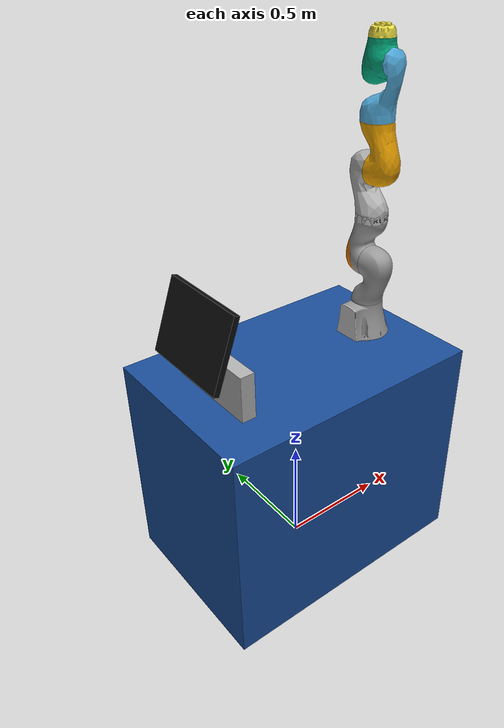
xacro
<?xml version="1.0"?>

<!-- top level -->
<robot name="iiwa7" xmlns:xacro="http://www.ros.org/wiki/xacro">

    <!-- propiedades rectangulo realidad-->
    <xacro:property name="base_length" value="1.20" />   <!-- largo  X -->
    <xacro:property name="base_width"  value="0.80" />   <!-- ancho  Y -->
    <xacro:property name="base_height" value="1.00" />   <!-- alto   Z -->
    <xacro:property name="base_mass"   value="40.0" />   <!-- kg       -->
    <xacro:property name="robot_offset_x" value="0.40" /> <!-- extremo en X: (length/2 - margen) -->
    <xacro:property name="robot_offset_y" value="0.0" />

    <xacro:property name="base_ixx" value="5.333" />
    <xacro:property name="base_iyy" value="5.600" />
    <xacro:property name="base_izz" value="5.467" />

    <xacro:property name="screen_offset_x"    value="-0.40" />
    <xacro:property name="screen_offset_y"    value="0.0" />
    <xacro:property name="screen_box_height"  value="0.20"  />
    <xacro:property name="screen_panel_z"     value="0.20" />

    <!-- include the iiwa macro and controller -->
    <xacro:include filename="$(find lbr_description)/urdf/iiwa7/iiwa7.urdf.xacro" />
    <xacro:include filename="$(find lbr_description)/gazebo/lbr_gazebo.xacro" />
    <xacro:include filename="$(find lbr_description)/ros2_control/lbr_system_interface.xacro" />

    <!-- arguments -->
    <xacro:arg name="robot_name" default="lbr" />
    <xacro:arg name="mode" default="mock" />
    <xacro:arg
        name="joint_limits_path"
        default="$(find lbr_description)/urdf/iiwa7/joint_limits.yaml" />
    <xacro:arg
        name="system_config_path"
        default="$(find lbr_description)/ros2_control/lbr_system_config.yaml" />
    <xacro:arg
        name="initial_joint_positions_path"
        default="$(find lbr_description)/ros2_control/initial_joint_positions.yaml" />

    <!-- KDL requires a link without inertia / Gazebo requires a connection to world link or robot
    will tipple https://github.com/lbr-stack/lbr_fri_ros2_stack/issues/230 -->
    <link name="world" />

    <!-- esto estaba antes de los cambios (dejalo por si acaso o algo twin)-->

    <!-- world base rectangular -->
    <joint name="$(arg robot_name)_world_base_joint" type="fixed">
        <parent link="world" />
        <child  link="$(arg robot_name)_base_link" />
        <origin xyz="0 0 ${base_height / 2}" rpy="0 0 0" />
    </joint>

    <link name="$(arg robot_name)_base_link">
        <inertial>
            <origin xyz="0 0 0" rpy="0 0 0" />
            <mass value="${base_mass}" />
            <inertia ixx="${base_ixx}" ixy="0.0" ixz="0.0"
                    iyy="${base_iyy}" iyz="0.0"
                    izz="${base_izz}" />
        </inertial>
        <visual>
            <origin xyz="0 0 0" rpy="0 0 0" />
            <geometry>
                <box size="${base_length} ${base_width} ${base_height}" />
            </geometry>
            <material name="base_material">
               <color rgba="0.1 0.3 0.6 1.0" />
            </material>
        </visual>
        <collision>
            <origin xyz="0 0 0" rpy="0 0 0" />
            <geometry>
                <box size="${base_length} ${base_width} ${base_height}" />
            </geometry>
        </collision>
    </link>

    <!-- Pantalla en el extremo opuesto al robot -->
    <link name="$(arg robot_name)_screen_link">
        <inertial>
            <origin xyz="0 0 0" rpy="0 0 0" />
            <mass value="3.0" />
            <inertia ixx="0.05" ixy="0.0" ixz="0.0"
                    iyy="0.03" iyz="0.0"
                    izz="0.07" />
        </inertial>
        <!-- Caja base/soporte -->
        <visual>
            <origin xyz="0 0 ${screen_box_height / 2}" rpy="0 0 0" />
            <geometry>
                <box size="0.4375 0.0625 ${screen_box_height}" />
            </geometry>
            <material name="screen_base_material">
                <color rgba="0.7 0.7 0.7 1.0" />
            </material>
        </visual>
        <collision>
            <origin xyz="0 0 ${screen_box_height / 2}" rpy="0 0 0" />
            <geometry>
                <box size="0.4375 0.0625 ${screen_box_height}" />
            </geometry>
        </collision>
    </link>

    <!-- Panel de la pantalla -->
    <link name="$(arg robot_name)_screen_panel_link">
        <inertial>
            <origin xyz="0 0 0" rpy="0 0 0" />
            <mass value="1.5" />
            <inertia ixx="0.02" ixy="0.0" ixz="0.0"
                    iyy="0.02" iyz="0.0"
                    izz="0.01" />
        </inertial>
        <!-- Panel -->
        <visual>
            <origin xyz="0 0 0" rpy="0 0 0" />
            <geometry>
                <box size="0.4125 0.025 0.3125" />
            </geometry>
            <material name="screen_panel_material">
                <color rgba="0.05 0.05 0.05 1.0" />
            </material>
        </visual>
        <collision>
            <origin xyz="0 0 0" rpy="0 0 0" />
            <geometry>
                <box size="0.4125 0.025 0.3125" />
            </geometry>
        </collision>
    </link>

    <!-- joint de la base de la pantalla la cosa esa gris-->
    <joint name="$(arg robot_name)_base_screen_joint" type="fixed">
        <parent link="$(arg robot_name)_base_link" />
        <child  link="$(arg robot_name)_screen_link" />
        <origin xyz="${screen_offset_x} ${screen_offset_y} ${base_height / 2}" rpy="0 0 1.5708" />
    </joint>

    <!-- Joint soporte panel inclinado-->
    <joint name="$(arg robot_name)_screen_panel_joint" type="fixed">
        <parent link="$(arg robot_name)_screen_link" />
        <child  link="$(arg robot_name)_screen_panel_link" />
        <origin xyz="0 0.075 ${screen_box_height + screen_panel_z * 0.5}" rpy="0.35 0 0" />
    </joint>

    <!-- base rectangular enganchado a lbr_link_0 -->
    <joint name="$(arg robot_name)_base_robot_joint" type="fixed">
        <parent link="$(arg robot_name)_base_link" />
        <child  link="$(arg robot_name)_link_0" />
        <origin xyz="${robot_offset_x} ${robot_offset_y} ${base_height / 2}" rpy="0 0 0" />
    </joint>

    <!-- macros for gazebo / mock / hardware -->
    <xacro:lbr_gazebo robot_name="$(arg robot_name)" />
    <xacro:lbr_system_interface
        robot_name="$(arg robot_name)"
        mode="$(arg mode)"
        system_config_path="$(arg system_config_path)"
        initial_joint_positions_path="$(arg initial_joint_positions_path)" />

    <!-- iiwa description -->
    <xacro:iiwa7
        robot_name="$(arg robot_name)"
        joint_limits_path="$(arg joint_limits_path)" />
</robot>

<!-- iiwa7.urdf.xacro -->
<robot xmlns:xacro="http://www.ros.org/wiki/xacro">
    <!-- robot as extracted via https://github.com/syuntoku14/fusion2urdf -->
    <xacro:macro name="iiwa7"
        params="robot_name:=^|lbr joint_limits_path:=^|'$(find lbr_description)/urdf/iiwa7/joint_limits.yaml'">

        <!-- load joint limits via yaml -->
        <xacro:property name="joint_limits" value="${xacro.load_yaml(joint_limits_path)}" />

        <!-- constants -->
        <xacro:property name="PI" value="3.1415926535897931" />
        <xacro:property name="joint_damping" value="10.0" />
        <xacro:property name="joint_friction" value="0.1" />

        <!-- links and joints -->
        <link name="${robot_name}_link_0">
            <inertial>
                <origin rpy="0 0 0" xyz="-0.012857 0.0 0.069964" />
                <mass value="4.855658" />
                <inertia ixx="0.017839" ixy="0.0" ixz="0.000781" iyy="0.022294" iyz="0.0"
                    izz="0.021334" />
            </inertial>
            <visual>
                <origin rpy="0 0 0" xyz="0 0 0" />
                <geometry>
                    <mesh filename="package://lbr_description/meshes/iiwa7/visual/link_0.dae" />
                </geometry>
            </visual>
            <collision>
                <origin rpy="0 0 0" xyz="0 0 0" />
                <geometry>
                    <mesh filename="package://lbr_description/meshes/iiwa7/collision/link_0.stl" />
                </geometry>
            </collision>
        </link>

        <joint name="${robot_name}_A1" type="revolute">
            <origin rpy="0 0 0" xyz="0.0 0.0 0.1475" />
            <parent link="${robot_name}_link_0" />
            <child link="${robot_name}_link_1" />
            <axis xyz="0.0 0.0 1.0" />
            <limit
                effort="${joint_limits['A1']['effort']}"
                lower="${joint_limits['A1']['lower'] * PI / 180}"
                upper="${joint_limits['A1']['upper'] * PI / 180}"
                velocity="${joint_limits['A1']['velocity'] * PI / 180}" />
            <safety_controller
                soft_lower_limit="${joint_limits['A1']['lower'] * PI / 180}"
                soft_upper_limit="${joint_limits['A1']['upper'] * PI / 180}"
                k_position="${joint_limits['A1']['velocity'] / joint_limits['A1']['safety_position_margin']}"
                k_velocity="${joint_limits['A1']['k_velocity']}" />
            <dynamics damping="${joint_damping}" friction="${joint_friction}" />
        </joint>

        <link name="${robot_name}_link_1">
            <inertial>
                <origin rpy="0 0 0" xyz="0.0 -0.034819 0.123299" />
                <mass value="3.394011" />
                <inertia ixx="0.021383" ixy="0.0" ixz="0.0" iyy="0.020403" iyz="0.003797"
                    izz="0.007563" />
            </inertial>
            <visual>
                <origin rpy="0 0 0" xyz="0.0 0.0 -0.1475" />
                <geometry>
                    <mesh filename="package://lbr_description/meshes/iiwa7/visual/link_1.dae" />
                </geometry>
            </visual>
            <collision>
                <origin rpy="0 0 0" xyz="0.0 0.0 -0.1475" />
                <geometry>
                    <mesh filename="package://lbr_description/meshes/iiwa7/collision/link_1.stl" />
                </geometry>
            </collision>
        </link>

        <joint name="${robot_name}_A2" type="revolute">
            <origin rpy="0 0 0" xyz="0.0 -0.0105 0.1925" />
            <parent link="${robot_name}_link_1" />
            <child link="${robot_name}_link_2" />
            <axis xyz="0.0 1.0 0.0" />
            <limit
                effort="${joint_limits['A2']['effort']}"
                lower="${joint_limits['A2']['lower'] * PI / 180}"
                upper="${joint_limits['A2']['upper'] * PI / 180}"
                velocity="${joint_limits['A2']['velocity'] * PI / 180}" />
            <safety_controller
                soft_lower_limit="${joint_limits['A2']['lower'] * PI / 180}"
                soft_upper_limit="${joint_limits['A2']['upper'] * PI / 180}"
                k_position="${joint_limits['A2']['velocity'] / joint_limits['A2']['safety_position_margin']}"
                k_velocity="${joint_limits['A2']['k_velocity']}" />
            <dynamics damping="${joint_damping}" friction="${joint_friction}" />
        </joint>

        <link name="${robot_name}_link_2">
            <inertial>
                <origin rpy="0 0 0" xyz="0.0 0.039793 0.086944" />
                <mass value="4.031991" />
                <inertia ixx="0.031697" ixy="0.0" ixz="0.0" iyy="0.03008" iyz="0.005889"
                    izz="0.009666" />
            </inertial>
            <visual>
                <origin rpy="0 0 0" xyz="0.0 0.0105 -0.34" />
                <geometry>
                    <mesh filename="package://lbr_description/meshes/iiwa7/visual/link_2.dae" />
                </geometry>
            </visual>
            <collision>
                <origin rpy="0 0 0" xyz="0.0 0.0105 -0.34" />
                <geometry>
                    <mesh filename="package://lbr_description/meshes/iiwa7/collision/link_2.stl" />
                </geometry>
            </collision>
        </link>

        <joint name="${robot_name}_A3" type="revolute">
            <origin rpy="0 0 0" xyz="0.0 0.0105 0.2075" />
            <parent link="${robot_name}_link_2" />
            <child link="${robot_name}_link_3" />
            <axis xyz="0.0 0.0 1.0" />
            <limit
                effort="${joint_limits['A3']['effort']}"
                lower="${joint_limits['A3']['lower'] * PI / 180}"
                upper="${joint_limits['A3']['upper'] * PI / 180}"
                velocity="${joint_limits['A3']['velocity'] * PI / 180}" />
            <safety_controller
                soft_lower_limit="${joint_limits['A3']['lower'] * PI / 180}"
                soft_upper_limit="${joint_limits['A3']['upper'] * PI / 180}"
                k_position="${joint_limits['A3']['velocity'] / joint_limits['A3']['safety_position_margin']}"
                k_velocity="${joint_limits['A3']['k_velocity']}" />
            <dynamics damping="${joint_damping}" friction="${joint_friction}" />
        </joint>

        <link name="${robot_name}_link_3">
            <inertial>
                <origin rpy="0 0 0" xyz="0.0 0.034819 0.123299" />
                <mass value="3.394011" />
                <inertia ixx="0.021383" ixy="0.0" ixz="0.0" iyy="0.020403" iyz="-0.003797"
                    izz="0.007563" />
            </inertial>
            <visual>
                <origin rpy="0 0 0" xyz="0.0 0.0 -0.5475" />
                <geometry>
                    <mesh filename="package://lbr_description/meshes/iiwa7/visual/link_3.dae" />
                </geometry>
            </visual>
            <collision>
                <origin rpy="0 0 0" xyz="0.0 0.0 -0.5475" />
                <geometry>
                    <mesh filename="package://lbr_description/meshes/iiwa7/collision/link_3.stl" />
                </geometry>
            </collision>
        </link>

        <joint name="${robot_name}_A4" type="revolute">
            <origin rpy="0 0 0" xyz="0.0 0.0105 0.1925" />
            <parent link="${robot_name}_link_3" />
            <child link="${robot_name}_link_4" />
            <axis xyz="0.0 -1.0 0.0" />
            <limit
                effort="${joint_limits['A4']['effort']}"
                lower="${joint_limits['A4']['lower'] * PI / 180}"
                upper="${joint_limits['A4']['upper'] * PI / 180}"
                velocity="${joint_limits['A4']['velocity'] * PI / 180}" />
            <safety_controller
                soft_lower_limit="${joint_limits['A4']['lower'] * PI / 180}"
                soft_upper_limit="${joint_limits['A4']['upper'] * PI / 180}"
                k_position="${joint_limits['A4']['velocity'] / joint_limits['A4']['safety_position_margin']}"
                k_velocity="${joint_limits['A4']['k_velocity']}" />
            <dynamics damping="${joint_damping}" friction="${joint_friction}" />
        </joint>

        <link name="${robot_name}_link_4">
            <inertial>
                <origin rpy="0 0 0" xyz="0.0 -0.039793 0.086944" />
                <mass value="4.031989" />
                <inertia ixx="0.031695" ixy="0.0" ixz="0.0" iyy="0.030079" iyz="-0.005889"
                    izz="0.009665" />
            </inertial>
            <visual>
                <origin rpy="0 0 0" xyz="0.0 -0.0105 -0.74" />
                <geometry>
                    <mesh filename="package://lbr_description/meshes/iiwa7/visual/link_4.dae" />
                </geometry>
            </visual>
            <collision>
                <origin rpy="0 0 0" xyz="0.0 -0.0105 -0.74" />
                <geometry>
                    <mesh filename="package://lbr_description/meshes/iiwa7/collision/link_4.stl" />
                </geometry>
            </collision>
        </link>

        <joint name="${robot_name}_A5" type="revolute">
            <origin rpy="0 0 0" xyz="0.0 -0.0105 0.2075" />
            <parent link="${robot_name}_link_4" />
            <child link="${robot_name}_link_5" />
            <axis xyz="0.0 0.0 1.0" />
            <limit
                effort="${joint_limits['A5']['effort']}"
                lower="${joint_limits['A5']['lower'] * PI / 180}"
                upper="${joint_limits['A5']['upper'] * PI / 180}"
                velocity="${joint_limits['A5']['velocity'] * PI / 180}" />
            <safety_controller
                soft_lower_limit="${joint_limits['A5']['lower'] * PI / 180}"
                soft_upper_limit="${joint_limits['A5']['upper'] * PI / 180}"
                k_position="${joint_limits['A5']['velocity'] / joint_limits['A5']['safety_position_margin']}"
                k_velocity="${joint_limits['A5']['k_velocity']}" />
            <dynamics damping="${joint_damping}" friction="${joint_friction}" />
        </joint>

        <link name="${robot_name}_link_5">
            <inertial>
                <origin rpy="0 0 0" xyz="0.0 -0.029824 0.076267" />
                <mass value="1.529239" />
                <inertia ixx="0.008485" ixy="0.0" ixz="0.0" iyy="0.007136" iyz="0.002806"
                    izz="0.003848" />
            </inertial>
            <visual>
                <origin rpy="0 0 0" xyz="0.0 0.0 -0.9475" />
                <geometry>
                    <mesh filename="package://lbr_description/meshes/iiwa7/visual/link_5.dae" />
                </geometry>
            </visual>
            <collision>
                <origin rpy="0 0 0" xyz="0.0 0.0 -0.9475" />
                <geometry>
                    <mesh filename="package://lbr_description/meshes/iiwa7/collision/link_5.stl" />
                </geometry>
            </collision>
        </link>

        <joint name="${robot_name}_A6" type="revolute">
            <origin rpy="0 0 0" xyz="0.0 -0.0707 0.1925" />
            <parent link="${robot_name}_link_5" />
            <child link="${robot_name}_link_6" />
            <axis xyz="0.0 1.0 0.0" />
            <limit
                effort="${joint_limits['A6']['effort']}"
                lower="${joint_limits['A6']['lower'] * PI / 180}"
                upper="${joint_limits['A6']['upper'] * PI / 180}"
                velocity="${joint_limits['A6']['velocity'] * PI / 180}" />
            <safety_controller
                soft_lower_limit="${joint_limits['A6']['lower'] * PI / 180}"
                soft_upper_limit="${joint_limits['A6']['upper'] * PI / 180}"
                k_position="${joint_limits['A6']['velocity'] / joint_limits['A6']['safety_position_margin']}"
                k_velocity="${joint_limits['A6']['k_velocity']}" />
            <dynamics damping="${joint_damping}" friction="${joint_friction}" />
        </joint>

        <link name="${robot_name}_link_6">
            <inertial>
                <origin rpy="0 0 0" xyz="0.0 0.07102 0.00495" />
                <mass value="2.403626" />
                <inertia ixx="0.007067" ixy="0.0" ixz="0.0" iyy="0.006804" iyz="0.000311"
                    izz="0.004629" />
            </inertial>
            <visual>
                <origin rpy="0 0 0" xyz="0.0 0.0707 -1.14" />
                <geometry>
                    <mesh filename="package://lbr_description/meshes/iiwa7/visual/link_6.dae" />
                </geometry>
            </visual>
            <collision>
                <origin rpy="0 0 0" xyz="0.0 0.0707 -1.14" />
                <geometry>
                    <mesh filename="package://lbr_description/meshes/iiwa7/collision/link_6.stl" />
                </geometry>
            </collision>
        </link>

        <joint name="${robot_name}_A7" type="revolute">
            <origin rpy="0 0 0" xyz="0.0 0.0707 0.091" />
            <parent link="${robot_name}_link_6" />
            <child link="${robot_name}_link_7" />
            <axis xyz="0.0 0.0 1.0" />
            <limit
                effort="${joint_limits['A7']['effort']}"
                lower="${joint_limits['A7']['lower'] * PI / 180}"
                upper="${joint_limits['A7']['upper'] * PI / 180}"
                velocity="${joint_limits['A7']['velocity'] * PI / 180}" />
            <safety_controller
                soft_lower_limit="${joint_limits['A7']['lower'] * PI / 180}"
                soft_upper_limit="${joint_limits['A7']['upper'] * PI / 180}"
                k_position="${joint_limits['A7']['velocity'] / joint_limits['A7']['safety_position_margin']}"
                k_velocity="${joint_limits['A7']['k_velocity']}" />
            <dynamics damping="${joint_damping}" friction="${joint_friction}" />
        </joint>

        <link name="${robot_name}_link_7">
            <inertial>
                <origin rpy="0 0 0" xyz="3.0000e-06 -2.0000e-06 1.3782e-02" />
                <mass value="0.259474" />
                <inertia ixx="0.000171" ixy="0.0" ixz="0.0" iyy="0.000171" iyz="0.0" izz="0.000299" />
            </inertial>
            <visual>
                <origin rpy="0 0 0" xyz="0.0 0.0 -1.231" />
                <geometry>
                    <mesh filename="package://lbr_description/meshes/iiwa7/visual/link_7.dae" />
                </geometry>
            </visual>
            <collision>
                <origin rpy="0 0 0" xyz="0.0 0.0 -1.231" />
                <geometry>
                    <mesh filename="package://lbr_description/meshes/iiwa7/collision/link_7.stl" />
                </geometry>
            </collision>
        </link>

        <joint name="${robot_name}_joint_ee" type="fixed">
            <parent link="${robot_name}_link_7" />
            <child link="${robot_name}_link_ee" />
            <origin xyz="0 0 0.035" rpy="0 0 0" />
        </joint>

        <link name="${robot_name}_link_ee">
        </link>
    </xacro:macro>
</robot>
